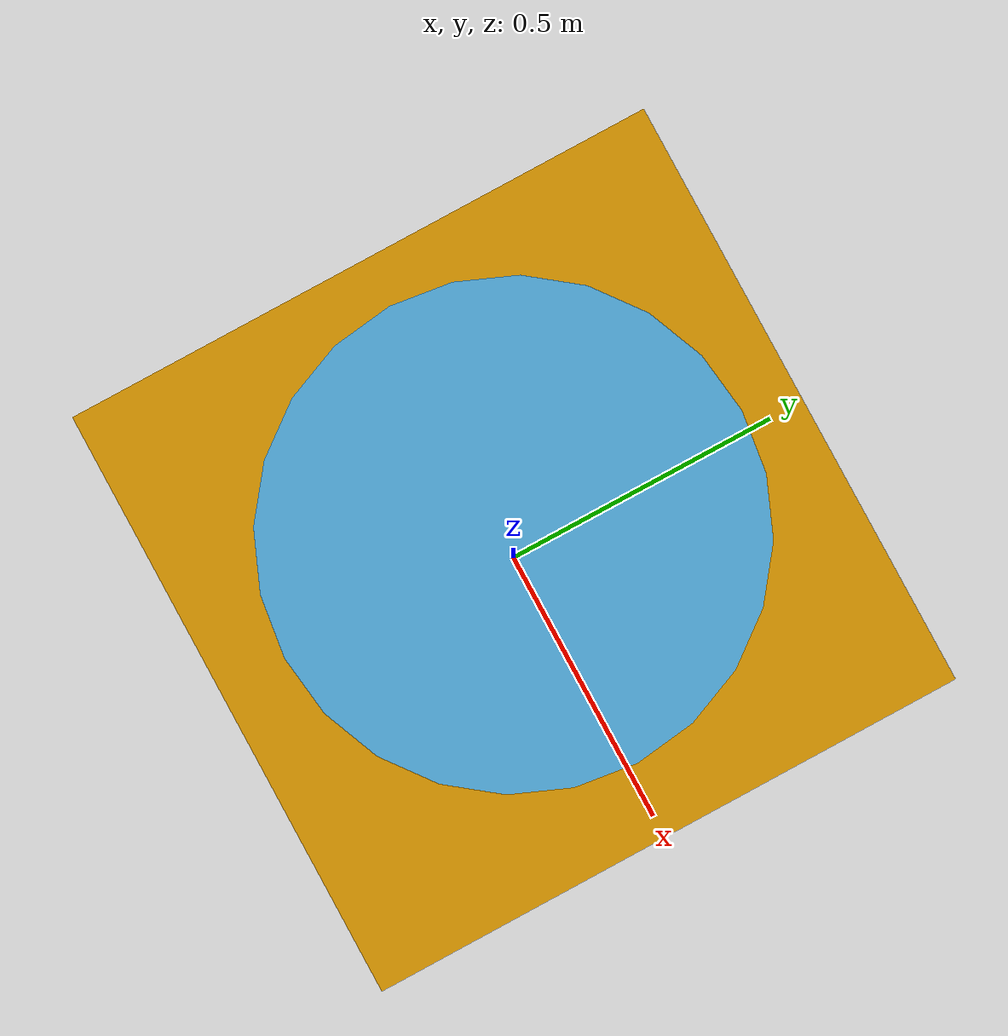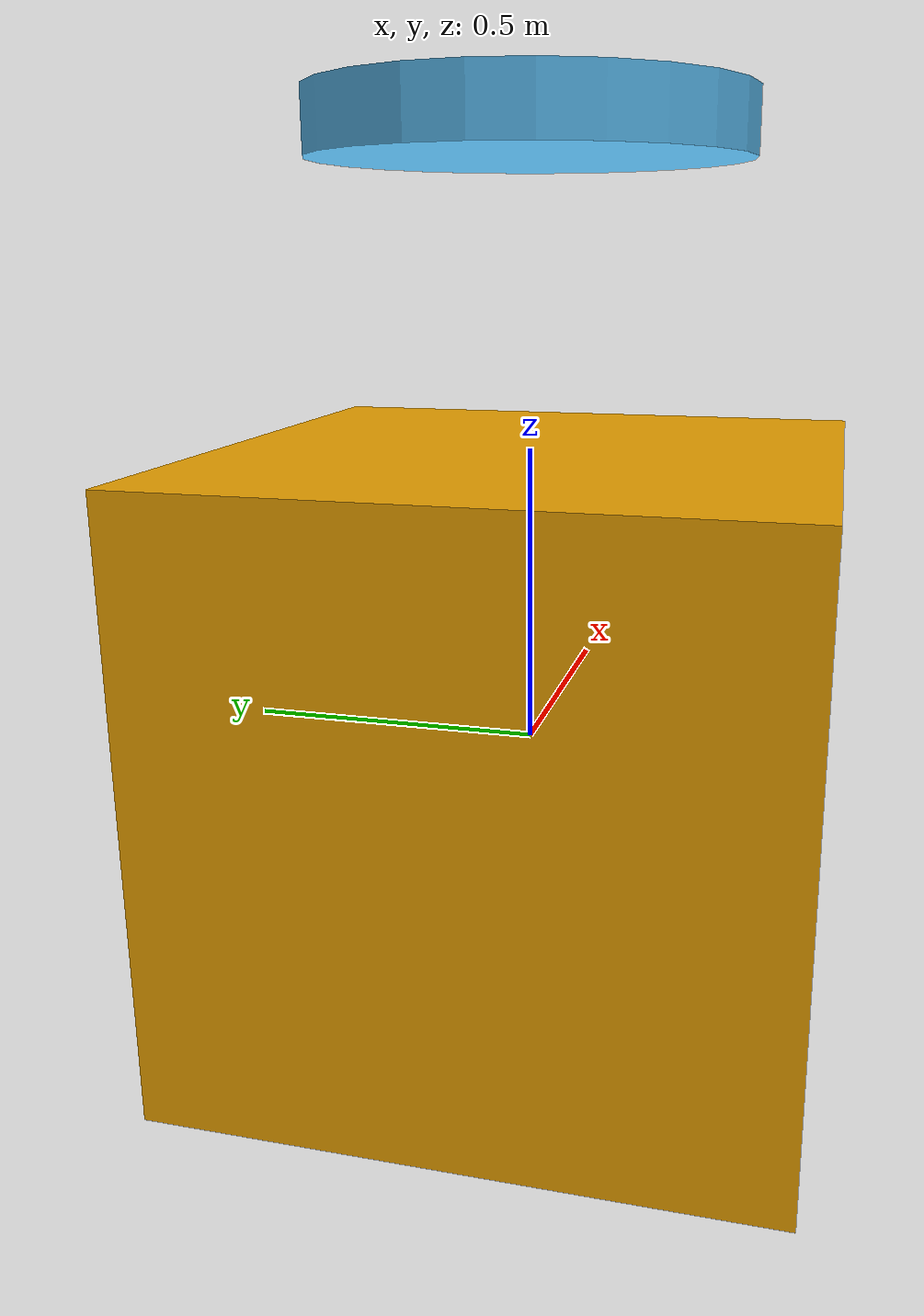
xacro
<?xml version="1.0" ?>

<robot name="basicarm" xmlns:xacro="http://www.ros.org/wiki/xacro">
    <link name="base_link">
        <visual>
            <origin rpy="0 0 0" xyz="0 0 0"/>
            <geometry>
                <box size="1 1 1"/>
            </geometry>
        </visual>
    </link>

    <joint name="base_link__link_01" type="revolute">
        <axis xyz="0 0 1" />
        <limit effort="1000.0" lower="-3.14" upper="3.14" velocity="0.5"/>
        <origin rpy="0 0 0" xyz="0 0 0.5"/>
        <parent link="base_link"/>
        <child link="link1"/>
    </joint>

    <link name="link1">
        <visual>
            <origin rpy="0 0 0" xyz="0 0 0.5"/>
            <geometry>
                <cylinder radius="0.35" length="0.1"/>
            </geometry>
        </visual>
    </link>
</robot>
